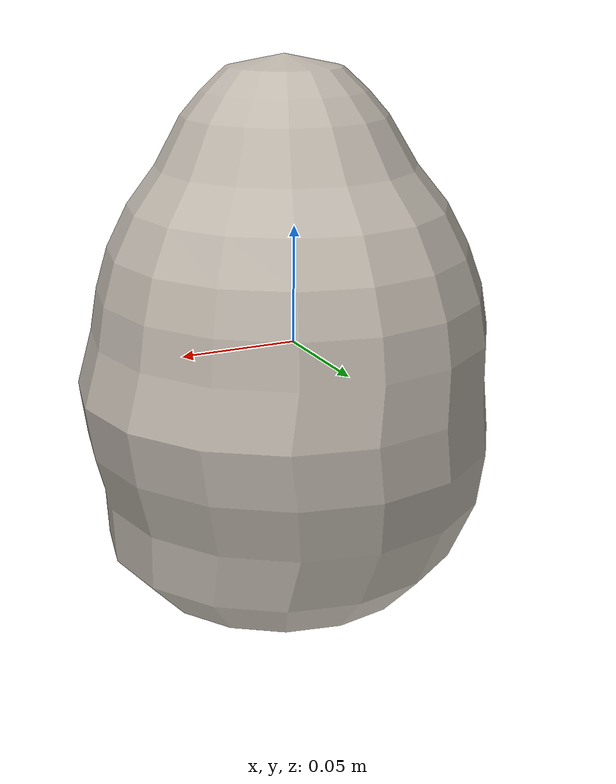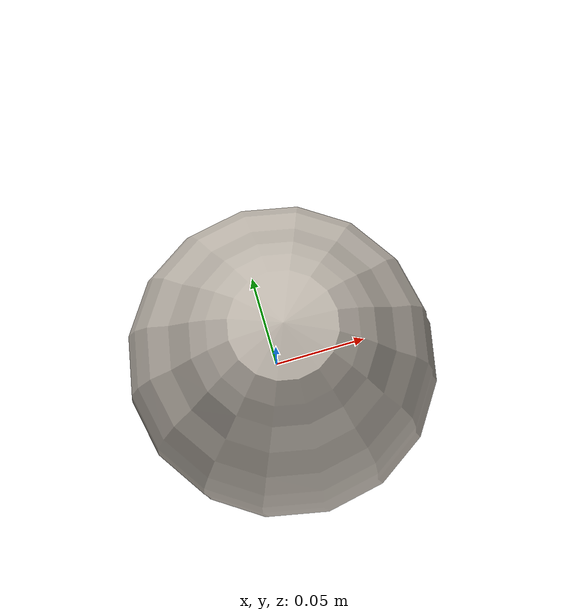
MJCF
<mujoco model="Lettuce_11">
  <compiler autolimits="true" boundmass="0.01" angle="radian"/>
  <default>
    <default class="/">
      <default class="__VISUAL_MJT__">
        <geom contype="0" conaffinity="0" group="0"/>
      </default>
      <default class="__STRUCTURAL_MJT__">
        <geom contype="8" conaffinity="15" group="4" friction="0.90000000000000002 0.90000000000000002 0.001" solref="0.025000000000000001 1" solimp="0.998 0.998 0.001"/>
      </default>
      <default class="__DYNAMIC_MJT__">
        <geom contype="1" conaffinity="15" group="4" friction="0.90000000000000002 0.90000000000000002 0.001" solref="0.025000000000000001 1" solimp="0.998 0.998 0.001"/>
      </default>
    </default>
  </default>
  <asset>
    <texture name="Lettuce2_Mat" type="2d" file="Lettuce2_AlbedoTransparency.png"/>
    <material name="material_Lettuce2_Mat" class="/" texture="Lettuce2_Mat" specular="0.5" shininess="0.5" rgba="1 1 1 1"/>
    <mesh name="Lettuce_11_lettuce_b1" class="/" file="Lettuce_11_lettuce_b1/Lettuce_11_lettuce_b1.obj" scale="1 1 1"/>
  </asset>
  <worldbody>
    <body name="Lettuce_11">
      <joint name="Lettuce_11_free" class="/" type="free" pos="0 0 0" axis="0 0 1" stiffness="0" range="0 0" armature="0" damping="0.10000000000000001" frictionloss="0"/>
      <body name="Lettuce_11_lettuce_b1" pos="0.0045700000000000003 0.00083000000000000001 0.0023500000000000001" quat="1 0 0 0">
        <geom name="Lettuce_11_lettuce_b1" class="__VISUAL_MJT__" type="mesh" material="material_Lettuce2_Mat" shellinertia="true" mesh="Lettuce_11_lettuce_b1"/>
        <geom name="Lettuce_11_PrimitiveCollider_0" class="__DYNAMIC_MJT__" type="capsule" size="0.08395521342754364 0.025481730699539185" rgba="0 1 0 1" pos="0.0063772201538085938 -0.00083028152585029602 -0.016985546797513962" quat="0.99999999999891198 1.4751396607739272e-06 0 0"/>
        <geom name="Lettuce_11_PrimitiveCollider_1" class="__DYNAMIC_MJT__" type="capsule" size="0.053069960325956345 0.014280814677476883" rgba="0 1 0 1" pos="0.0015999999595806003 -0.0014998249243944883 0.054367855191230774" quat="0.99999999999891198 1.4751396607739272e-06 0 0"/>
      </body>
    </body>
  </worldbody>
</mujoco>
